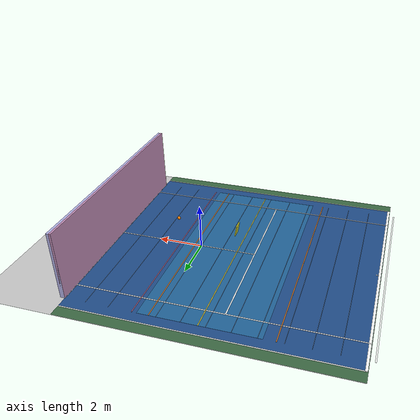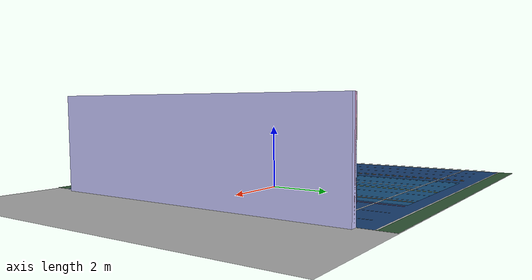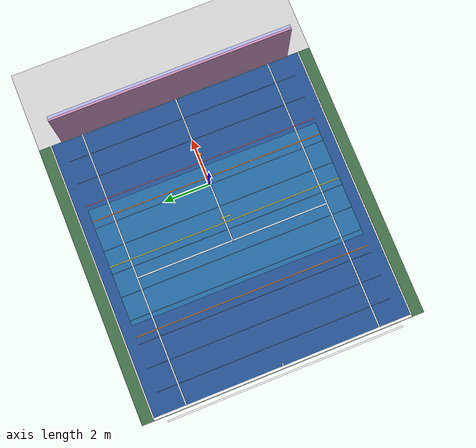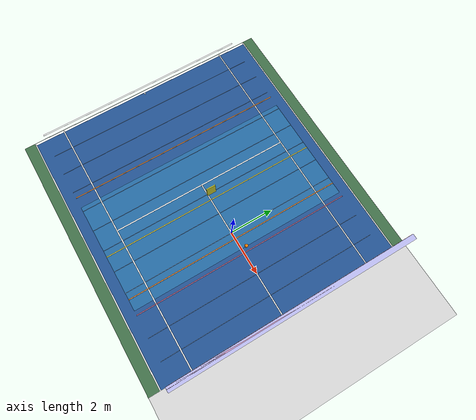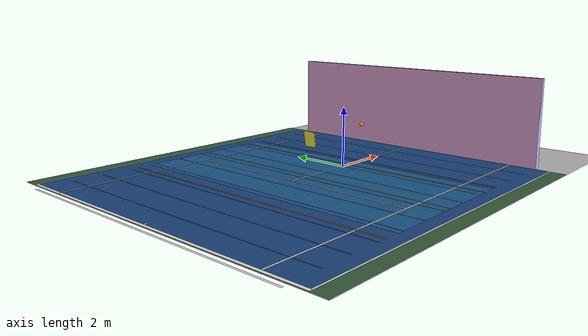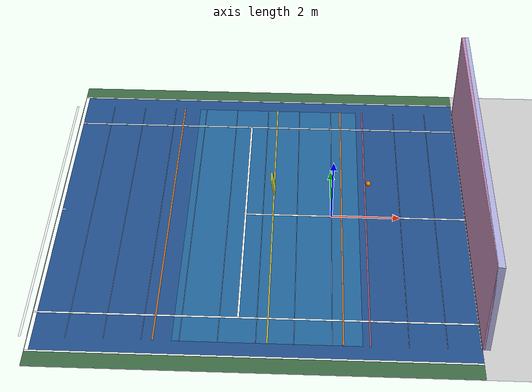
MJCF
<mujoco model="wall_ball">
    <compiler angle="degree" coordinate="local" inertiafromgeom="true" />
    <option integrator="RK4" timestep="0.002" />
    <size nconmax="500" njmax="1000" />
    <default>
        <joint armature="0.1" damping="1" limited="true" />
        <geom condim="3" density="1000" friction="1 0.5 0.5" margin="0.001" rgba="0.8 0.8 0.8 1" />
    </default>
    <asset>
        <texture name="grid" type="2d" builtin="checker" rgb1=".1 .2 .3" rgb2=".2 .3 .4" width="300" height="300" mark="none" />
        <material name="grid" texture="grid" texrepeat="3 3" texuniform="true" reflectance=".2" />
    </asset>
    <worldbody>
        <light diffuse=".8 .8 .8" pos="0 0 5" specular="0.1 0.1 0.1" />
        <camera name="side" pos="0 -8 3" xyaxes="1 0 0 0 1 2" />
        <geom name="floor" pos="0 0 0" size="8 6 0.1" type="plane" material="grid" />

        <site name="court_line_wall_base" type="box" pos="3.9 0 0.006" size="0.03 5 0.002" rgba="1 1 1 0.8" />
        <site name="court_line_baseline" type="box" pos="-8.2 0 0.006" size="0.03 5 0.002" rgba="1 1 1 0.8" />
        <site name="court_tick_xm8" type="box" pos="-8 0 0.004" size="0.01 5 0.002" rgba="1 1 1 0.22" />
        <site name="court_tick_xm7" type="box" pos="-7 0 0.004" size="0.01 5 0.002" rgba="1 1 1 0.22" />
        <site name="court_tick_xm6" type="box" pos="-6 0 0.004" size="0.01 5 0.002" rgba="1 1 1 0.22" />
        <site name="court_tick_xm5" type="box" pos="-5 0 0.004" size="0.01 5 0.002" rgba="1 1 1 0.22" />
        <site name="court_tick_xm4" type="box" pos="-4 0 0.004" size="0.01 5 0.002" rgba="1 1 1 0.22" />
        <site name="court_tick_xm3" type="box" pos="-3 0 0.004" size="0.01 5 0.002" rgba="1 1 1 0.22" />
        <site name="court_tick_xm2" type="box" pos="-2 0 0.004" size="0.01 5 0.002" rgba="1 1 1 0.22" />
        <site name="court_tick_xm1" type="box" pos="-1 0 0.004" size="0.01 5 0.002" rgba="1 1 1 0.22" />
        <site name="court_tick_x0" type="box" pos="0 0 0.004" size="0.01 5 0.002" rgba="1 1 1 0.35" />
        <site name="court_tick_xp1" type="box" pos="1 0 0.004" size="0.01 5 0.002" rgba="1 1 1 0.22" />
        <site name="court_tick_xp2" type="box" pos="2 0 0.004" size="0.01 5 0.002" rgba="1 1 1 0.22" />
        <site name="court_tick_xp3" type="box" pos="3 0 0.004" size="0.01 5 0.002" rgba="1 1 1 0.22" />
        <site name="court_lane_strip" type="box" pos="-1.7 0 0.002" size="2.5 5 0.001" rgba="0.2 0.8 0.9 0.15" />
        <site name="court_line_lane_min" type="box" pos="-4.7 0 0.008" size="0.02 5 0.002" rgba="0.25 0.9 1 0.7" />
        <site name="court_line_lane_max" type="box" pos="0.3 0 0.008" size="0.02 5 0.002" rgba="0.25 0.9 1 0.7" />
        <site name="court_line_home" type="box" pos="-1.7 0 0.01" size="0.02 5 0.002" rgba="0.95 0.85 0.2 0.85" />
        <site name="court_line_fence_min" type="box" pos="-4.7 0 0.012" size="0.02 5 0.002" rgba="1 0.55 0.15 0.85" />
        <site name="court_line_fence_max" type="box" pos="0.3 0 0.012" size="0.02 5 0.002" rgba="1 0.55 0.15 0.85" />
        <site name="court_line_serve" type="box" pos="1.0 0 0.006" size="0.02 5 0.002" rgba="1 0.4 0.45 0.6" />
        <site name="court_tennis_apron" type="box" pos="-2.05 0 0.001" size="5.95 6 0.0005" rgba="0.24 0.42 0.27 1" />
        <site name="court_tennis_surface" type="box" pos="-2.0425 0 0.002" size="5.9425 5.485 0.0005" rgba="0.13 0.31 0.55 1" />
        <site name="court_tennis_baseline" type="box" pos="-7.935 0 0.006" size="0.05 5.485 0.001" rgba="1 1 1 1" />
        <site name="court_tennis_service_line" type="box" pos="-2.5 0 0.006" size="0.025 4.115 0.001" rgba="1 1 1 1" />
        <site name="court_tennis_singles_left" type="box" pos="-2.0425 -4.115 0.006" size="5.9425 0.025 0.001" rgba="1 1 1 1" />
        <site name="court_tennis_singles_right" type="box" pos="-2.0425 4.115 0.006" size="5.9425 0.025 0.001" rgba="1 1 1 1" />
        <site name="court_tennis_doubles_left" type="box" pos="-2.0425 -5.485 0.006" size="5.9425 0.025 0.001" rgba="1 1 1 1" />
        <site name="court_tennis_doubles_right" type="box" pos="-2.0425 5.485 0.006" size="5.9425 0.025 0.001" rgba="1 1 1 1" />
        <site name="court_tennis_center_service" type="box" pos="0.7 0 0.006" size="3.2 0.025 0.001" rgba="1 1 1 1" />
        <site name="court_tennis_center_mark" type="box" pos="-7.835 0 0.01" size="0.05 0.025 0.001" rgba="1 1 1 1" />

        <body name="wall" pos="4 0 1.5">
            <site name="wall_sensor" pos="-0.06 0 0" size="0.05 5 1.5" type="box" rgba="1 0 0 0.15" />
            <geom name="wall_geom" size="0.1 5 1.5" type="box" rgba="0.7 0.7 0.9 1" />
        </body>

        <body name="paddle_base" pos="-1.7 0 1.2">
            <joint name="paddle_slide_x" type="slide" axis="1 0 0" range="-6.5 2" damping="5" />
            <joint name="paddle_slide_y" type="slide" axis="0 1 0" range="-3 3" damping="5" />
            <joint name="paddle_slide_z" type="slide" axis="0 0 1" range="-0.9 2" damping="5" />
            <body name="paddle_head" pos="0 0 0" euler="0 -10 0">
                <site name="paddle_sensor" pos="0 0 0" size="0.02 0.2 0.25" type="box" rgba="0 1 0 0.15" />
                <geom name="paddle_face" type="box" pos="0 0 0" size="0.02 0.2 0.25" rgba="0.9 0.9 0.2 1" solref="0.01 0.5" mass="0.35" />
            </body>
        </body>

        <body name="ball" pos="1.0 0 1.3">
            <joint name="ball_x" type="free" limited="false" damping="0" armature="0" />
            <geom name="ball_geom" type="sphere" size="0.07" rgba="1 0.5 0 1" mass="0.057" friction="0.3 0.1 0.1" priority="1" solref="0.01 0.15" />
        </body>
    </worldbody>
    <actuator>
        <position name="paddle_target_x" joint="paddle_slide_x" kp="300" kv="18" ctrlrange="-6.5 2" ctrllimited="true" forcerange="-100 100" forcelimited="true" />
        <position name="paddle_target_y" joint="paddle_slide_y" kp="300" kv="18" ctrlrange="-3 3" ctrllimited="true" forcerange="-100 100" forcelimited="true" />
        <position name="paddle_target_z" joint="paddle_slide_z" kp="300" kv="18" ctrlrange="-0.9 2" ctrllimited="true" forcerange="-100 100" forcelimited="true" />
    </actuator>
    <sensor>
        <touch name="paddle_touch" site="paddle_sensor" />
        <touch name="wall_touch" site="wall_sensor" />
    </sensor>
</mujoco>
